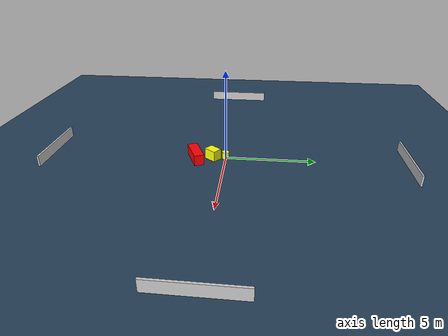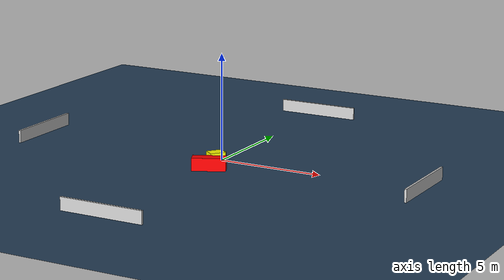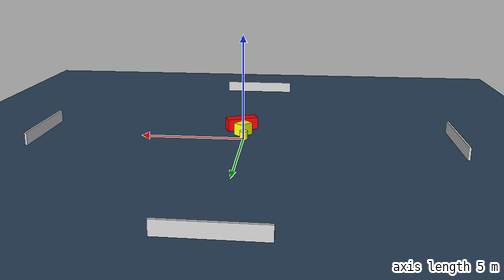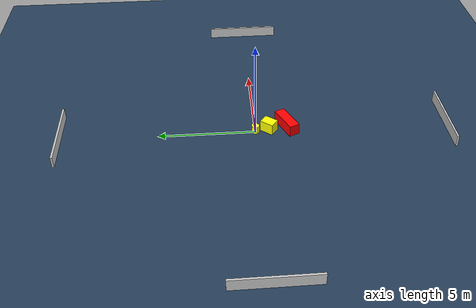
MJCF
<?xml version="1.0" ?>
<mujoco model="generated_environment">
  <option timestep="0.01" integrator="RK4" cone="elliptic"/>
  <default>
    <geom density="1"/>
  </default>
  <asset>
    <texture builtin="gradient" height="3072" name="skybox" rgb1="0.3 0.5 0.7" rgb2="0 0 0" type="skybox" width="512"/>
    <texture builtin="checker" height="300" name="groundplane" rgb1="0.2 0.3 0.4" rgb2="0.1 0.2 0.3" type="2d" width="300"/>
    <material name="groundplane" reflectance="0.2" texrepeat="5 5" texture="groundplane"/>
  </asset>
  <worldbody>
    <light dir="0 0 -1" directional="true" pos="0 0 1.5"/>
    <geom condim="3" friction="0.5 0.005 0.001" material="groundplane" name="floor" pos="0 0 0" size="0 0 0.05" type="plane"/>
    <body name="walls">
      <geom name="wall_1" condim="4" pos="-10.0 0.0 0.3" rgba="0.800000011920929 0.800000011920929 0.800000011920929 1.0" size="0.05 2.0 0.3" type="box"/>
      <geom name="wall_2" condim="4" pos="10.0 0.0 0.3" rgba="0.800000011920929 0.800000011920929 0.800000011920929 1.0" size="0.05 2.0 0.3" type="box"/>
      <geom name="wall_3" condim="4" pos="0.0 -10.0 0.3" rgba="0.800000011920929 0.800000011920929 0.800000011920929 1.0" size="2.0 0.05 0.3" type="box"/>
      <geom name="wall_4" condim="4" pos="0.0 10.0 0.3" rgba="0.800000011920929 0.800000011920929 0.800000011920929 1.0" size="2.0 0.05 0.3" type="box"/>
    </body>
    <body name="robot">
      <joint name="joint_x" type="slide" pos="0 0 0" axis="1 0 0"/>
      <joint name="joint_y" type="slide" pos="0 0 0" axis="0 1 0"/>
      <geom name="robot" type="cylinder" pos="0.0 0.0 0.2" size="0.2 0.2 0.0" mass="5.0" friction="1.0 0.005 0.0001" condim="4" rgba="1.0 1.0 0.0 1.0"/>
    </body>
    <body name="obstacle_1_movable">
      <geom name="obstacle_1_movable" condim="4" pos="0.08979477652437363 -0.7093630879262093 0.3" euler="0 0 231.8091001936632" friction="0.0 0.005 0.001" rgba="1.0 1.0 0.0 1.0" size="0.36363908014922885 0.27134864496963196 0.3" type="box" mass="0.1"/>
      <joint type="free"/>
    </body>
    <body name="obstacle_2_static">
      <geom name="obstacle_2_static" condim="4" pos="0.2729284832518593 -1.6551253254506255 0.3" euler="0 0 23.9246569380401" friction="0.0 0.005 0.001" rgba="1.0 0.0 0.0 1.0" size="0.7754399367492577 0.27511263292369315 0.3" type="box"/>
    </body>
  </worldbody>
  <actuator>
    <motor name="actuator_x" joint="joint_x" gear="1" ctrlrange="-1 1"/>
    <motor name="actuator_y" joint="joint_y" gear="1" ctrlrange="-1 1"/>
  </actuator>
</mujoco>
